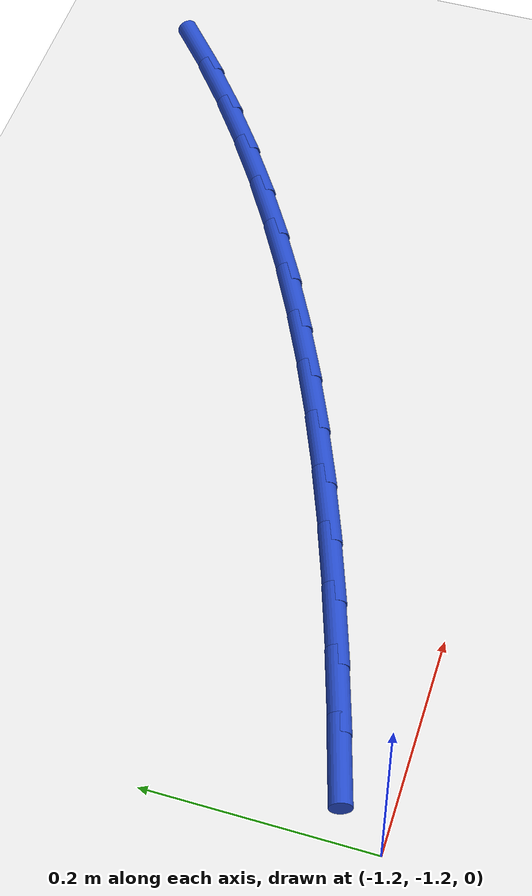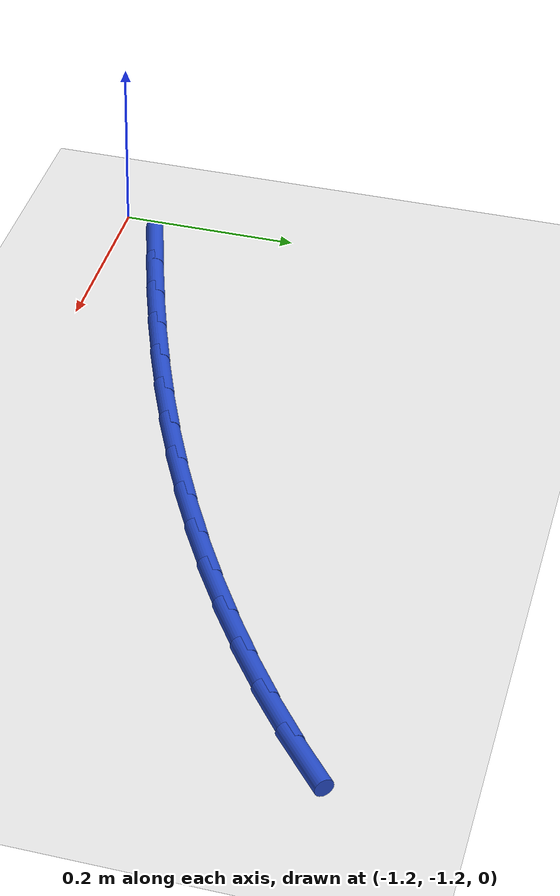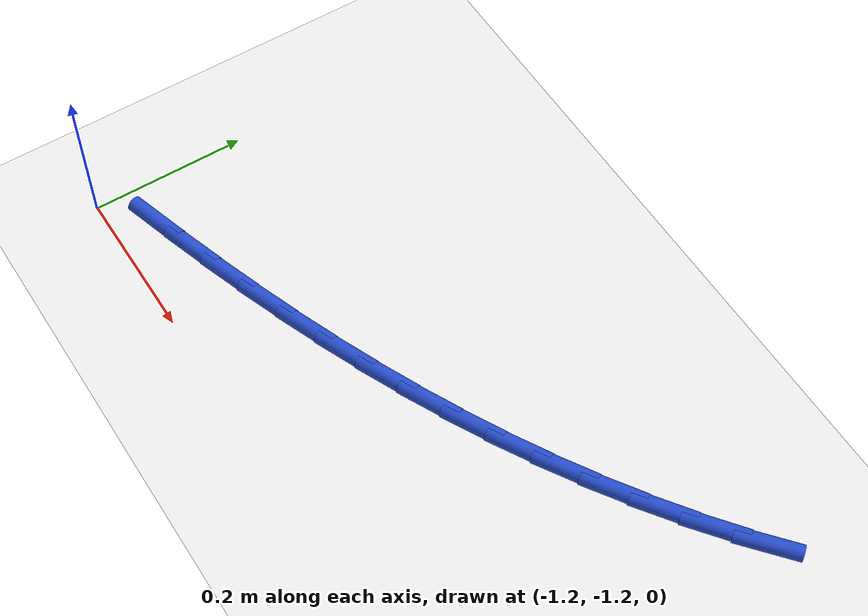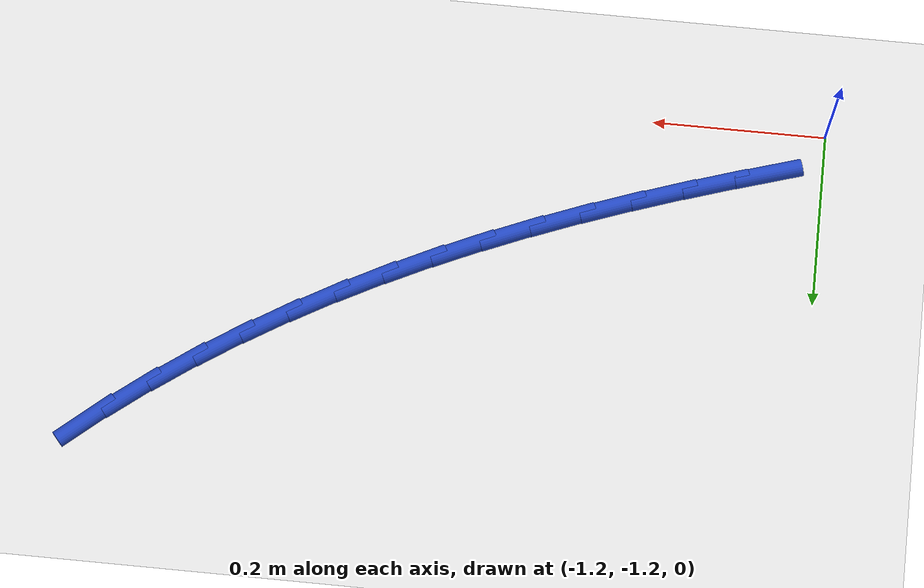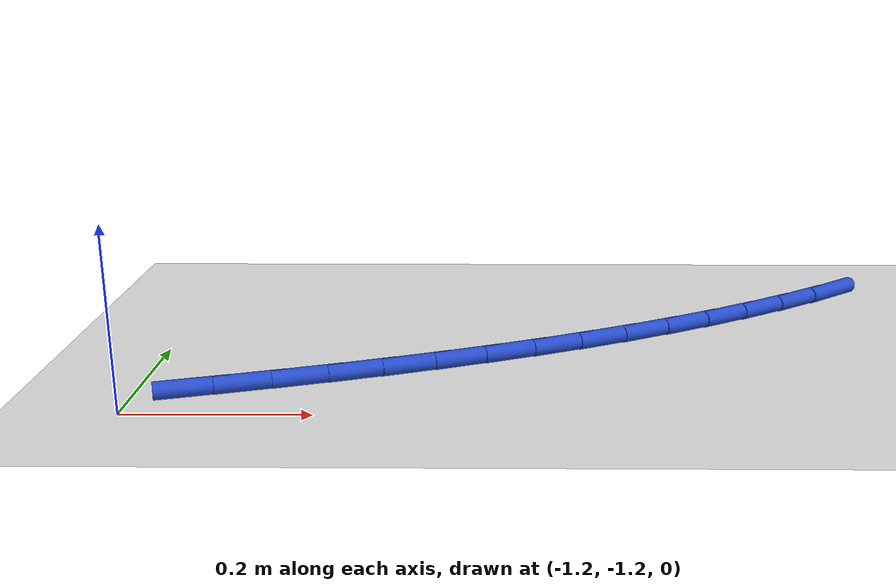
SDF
<sdf version="1.6">
 <world name="default">
  <model name="ground_plane">
   <static>1</static>
   <link name="link">
    <collision name="collision">
     <geometry><plane><normal>0 0 1</normal><size>100 100</size></plane></geometry>
     <surface><friction><ode><mu>100</mu><mu2>50</mu2></ode></friction></surface>
    </collision>
    <visual name="visual">
     <cast_shadows>0</cast_shadows>
     <geometry><plane><normal>0 0 1</normal><size>100 100</size></plane></geometry>
     <material>
      <script><uri>file://media/materials/scripts/gazebo.material</uri><name>Gazebo/WhiteGlow</name></script>
     </material>
    </visual>
   </link>
  </model>
  <model name="line">
   <link name="link_91">
    <pose>-1.1367857805679902 -1.1479920714099157 0.01 0 1.57 0.29685842767627246</pose>
    <collision name="collision">
     <geometry><cylinder><radius>0.01</radius><length>0.08</length></cylinder></geometry>
    </collision>
    <visual name="visual">
     <material>
      <script><name>Gazebo/Blue</name><uri>file://media/materials/scripts/gazebo.material</uri></script>
     </material>
     <geometry><cylinder><radius>0.01</radius><length>0.08</length></cylinder></geometry>
    </visual>
   </link>
   <link name="link_92">
    <pose>-1.077496412826414 -1.1298556083133005 0.01 0 1.57 0.31279180169362814</pose>
    <collision name="collision">
     <geometry><cylinder><radius>0.01</radius><length>0.08</length></cylinder></geometry>
    </collision>
    <visual name="visual">
     <material>
      <script><name>Gazebo/Blue</name><uri>file://media/materials/scripts/gazebo.material</uri></script>
     </material>
     <geometry><cylinder><radius>0.01</radius><length>0.08</length></cylinder></geometry>
    </visual>
   </link>
   <link name="link_93">
    <pose>-1.0191241030561238 -1.110977505063016 0.01 0 1.57 0.33088033508728176</pose>
    <collision name="collision">
     <geometry><cylinder><radius>0.01</radius><length>0.08</length></cylinder></geometry>
    </collision>
    <visual name="visual">
     <material>
      <script><name>Gazebo/Blue</name><uri>file://media/materials/scripts/gazebo.material</uri></script>
     </material>
     <geometry><cylinder><radius>0.01</radius><length>0.08</length></cylinder></geometry>
    </visual>
   </link>
   <link name="link_94">
    <pose>-0.9616598378628564 -1.0912380252396612 0.01 0 1.57 0.3511331961284003</pose>
    <collision name="collision">
     <geometry><cylinder><radius>0.01</radius><length>0.08</length></cylinder></geometry>
    </collision>
    <visual name="visual">
     <material>
      <script><name>Gazebo/Blue</name><uri>file://media/materials/scripts/gazebo.material</uri></script>
     </material>
     <geometry><cylinder><radius>0.01</radius><length>0.08</length></cylinder></geometry>
    </visual>
   </link>
   <link name="link_95">
    <pose>-0.9050946038523461 -1.0705174324238338 0.01 0 1.57 0.3735403742956717</pose>
    <collision name="collision">
     <geometry><cylinder><radius>0.01</radius><length>0.08</length></cylinder></geometry>
    </collision>
    <visual name="visual">
     <material>
      <script><name>Gazebo/Blue</name><uri>file://media/materials/scripts/gazebo.material</uri></script>
     </material>
     <geometry><cylinder><radius>0.01</radius><length>0.08</length></cylinder></geometry>
    </visual>
   </link>
   <link name="link_96">
    <pose>-0.8494193876303268 -1.0486959901961312 0.01 0 1.57 0.39806941027231657</pose>
    <collision name="collision">
     <geometry><cylinder><radius>0.01</radius><length>0.08</length></cylinder></geometry>
    </collision>
    <visual name="visual">
     <material>
      <script><name>Gazebo/Blue</name><uri>file://media/materials/scripts/gazebo.material</uri></script>
     </material>
     <geometry><cylinder><radius>0.01</radius><length>0.08</length></cylinder></geometry>
    </visual>
   </link>
   <link name="link_97">
    <pose>-0.7946251758025353 -1.0256539621371523 0.01 0 1.57 0.4246622644331762</pose>
    <collision name="collision">
     <geometry><cylinder><radius>0.01</radius><length>0.08</length></cylinder></geometry>
    </collision>
    <visual name="visual">
     <material>
      <script><name>Gazebo/Blue</name><uri>file://media/materials/scripts/gazebo.material</uri></script>
     </material>
     <geometry><cylinder><radius>0.01</radius><length>0.08</length></cylinder></geometry>
    </visual>
   </link>
   <link name="link_98">
    <pose>-0.7407029549747057 -1.0012716118274947 0.01 0 1.57 0.45323258747476797</pose>
    <collision name="collision">
     <geometry><cylinder><radius>0.01</radius><length>0.08</length></cylinder></geometry>
    </collision>
    <visual name="visual">
     <material>
      <script><name>Gazebo/Blue</name><uri>file://media/materials/scripts/gazebo.material</uri></script>
     </material>
     <geometry><cylinder><radius>0.01</radius><length>0.08</length></cylinder></geometry>
    </visual>
   </link>
   <link name="link_99">
    <pose>-0.6876437117525728 -0.9754292028477565 0.01 0 1.57 0.4836637007986565</pose>
    <collision name="collision">
     <geometry><cylinder><radius>0.01</radius><length>0.08</length></cylinder></geometry>
    </collision>
    <visual name="visual">
     <material>
      <script><name>Gazebo/Blue</name><uri>file://media/materials/scripts/gazebo.material</uri></script>
     </material>
     <geometry><cylinder><radius>0.01</radius><length>0.08</length></cylinder></geometry>
    </visual>
   </link>
   <link name="link_100">
    <pose>-0.6354384327418707 -0.9480069987785353 0.01 0 1.57 0.5158076121946578</pose>
    <collision name="collision">
     <geometry><cylinder><radius>0.01</radius><length>0.08</length></cylinder></geometry>
    </collision>
    <visual name="visual">
     <material>
      <script><name>Gazebo/Blue</name><uri>file://media/materials/scripts/gazebo.material</uri></script>
     </material>
     <geometry><cylinder><radius>0.01</radius><length>0.08</length></cylinder></geometry>
    </visual>
   </link>
   <link name="link_101">
    <pose>-0.5840781045483362 -0.9188852632004297 0.01 0 1.57 0.5494853710762237</pose>
    <collision name="collision">
     <geometry><cylinder><radius>0.01</radius><length>0.08</length></cylinder></geometry>
    </collision>
    <visual name="visual">
     <material>
      <script><name>Gazebo/Blue</name><uri>file://media/materials/scripts/gazebo.material</uri></script>
     </material>
     <geometry><cylinder><radius>0.01</radius><length>0.08</length></cylinder></geometry>
    </visual>
   </link>
   <link name="link_102">
    <pose>-0.5335537137777031 -0.8879442596940375 0.01 0 1.57 0.5844976781546777</pose>
    <collision name="collision">
     <geometry><cylinder><radius>0.01</radius><length>0.08</length></cylinder></geometry>
    </collision>
    <visual name="visual">
     <material>
      <script><name>Gazebo/Blue</name><uri>file://media/materials/scripts/gazebo.material</uri></script>
     </material>
     <geometry><cylinder><radius>0.01</radius><length>0.08</length></cylinder></geometry>
    </visual>
   </link>
   <link name="link_103">
    <pose>-0.48385804054246456 -0.8550648181850508 0.01 0 1.57 0.621225770977526</pose>
    <collision name="collision">
     <geometry><cylinder><radius>0.01</radius><length>0.08</length></cylinder></geometry>
    </collision>
    <visual name="visual">
     <material>
      <script><name>Gazebo/Blue</name><uri>file://media/materials/scripts/gazebo.material</uri></script>
     </material>
     <geometry><cylinder><radius>0.01</radius><length>0.08</length></cylinder></geometry>
    </visual>
   </link>
   <link name="link_104">
    <pose>-0.43509683324352527 -0.8201634411917609 0.01 0 1.57 0.6606870627666125</pose>
    <collision name="collision">
     <geometry><cylinder><radius>0.01</radius><length>0.08</length></cylinder></geometry>
    </collision>
    <visual name="visual">
     <material>
      <script><name>Gazebo/Blue</name><uri>file://media/materials/scripts/gazebo.material</uri></script>
     </material>
     <geometry><cylinder><radius>0.01</radius><length>0.08</length></cylinder></geometry>
    </visual>
   </link>
   <link name="link_105">
    <pose>-0.38755409343394137 -0.7832129191710113 0.01 0 1.57 0.7032444381135472</pose>
    <collision name="collision">
     <geometry><cylinder><radius>0.01</radius><length>0.08</length></cylinder></geometry>
    </collision>
    <visual name="visual">
     <material>
      <script><name>Gazebo/Blue</name><uri>file://media/materials/scripts/gazebo.material</uri></script>
     </material>
     <geometry><cylinder><radius>0.01</radius><length>0.08</length></cylinder></geometry>
    </visual>
   </link>
  </model>
 </world>
</sdf>
